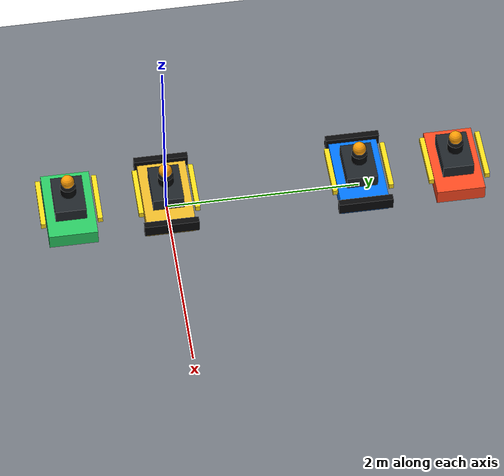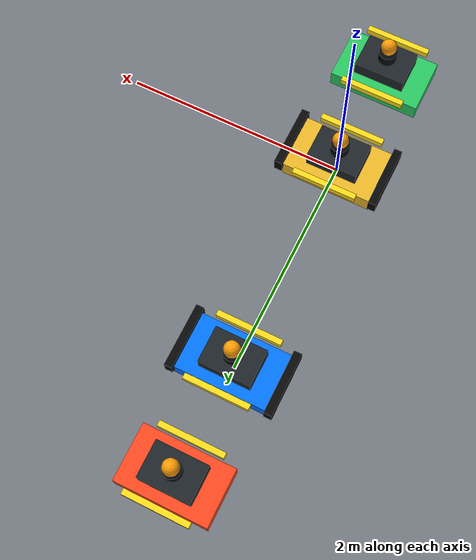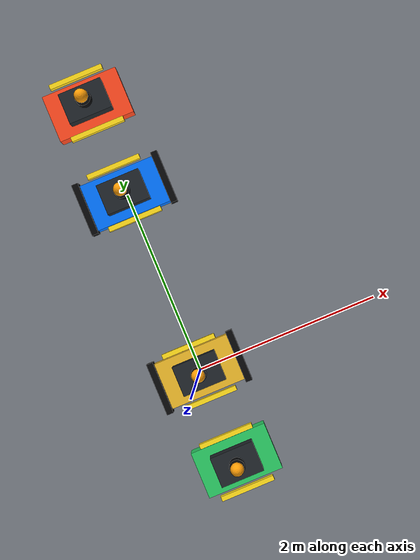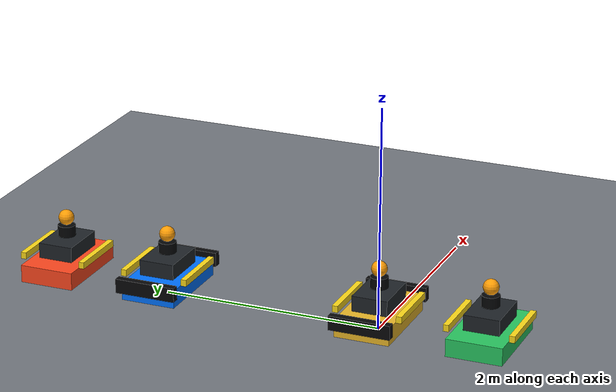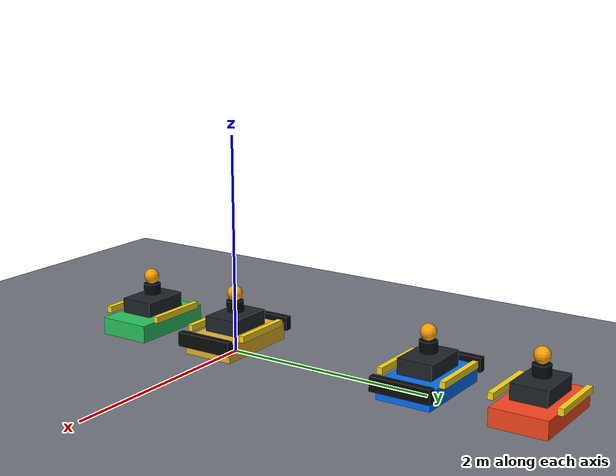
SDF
<?xml version="1.0" ?>
<sdf version="1.9">
  <world name="two_cars_world">
    <gravity>0 0 -9.8</gravity>

    <light name="sun" type="directional">
      <cast_shadows>true</cast_shadows>
      <pose>0 0 10 0 0 0</pose>
      <diffuse>0.8 0.8 0.8 1</diffuse>
      <specular>0.2 0.2 0.2 1</specular>
      <direction>-0.5 0.1 -0.9</direction>
    </light>

    <model name="floor">
      <static>true</static>
      <link name="floor_link">
        <collision name="floor_collision">
          <geometry>
            <plane>
              <normal>0 0 1</normal>
              <size>10 9</size>
            </plane>
          </geometry>
        </collision>
        <visual name="floor_visual">
          <geometry>
            <plane>
              <normal>0 0 1</normal>
              <size>10 9</size>
            </plane>
          </geometry>
          <material>
            <ambient>0.45 0.47 0.5 1</ambient>
            <diffuse>0.45 0.47 0.5 1</diffuse>
          </material>
        </visual>
      </link>
    </model>

    <model name="AGV1">
      <static>true</static>
      <pose>0 0 0 0 0 0</pose>
      <link name="AGV1_link">
        <visual name="base">
          <pose>0 0 0.13 0 0 0</pose>
          <geometry>
            <box>
              <size>0.82 0.50 0.16</size>
            </box>
          </geometry>
          <material>
            <ambient>0.92 0.72 0.16 1</ambient>
            <diffuse>0.92 0.72 0.16 1</diffuse>
          </material>
        </visual>
        <collision name="base_collision">
          <pose>0 0 0.13 0 0 0</pose>
          <geometry>
            <box>
              <size>0.82 0.50 0.16</size>
            </box>
          </geometry>
        </collision>
        <visual name="top_deck">
          <pose>0 0 0.30 0 0 0</pose>
          <geometry>
            <box>
              <size>0.46 0.32 0.14</size>
            </box>
          </geometry>
          <material>
            <ambient>0.12 0.14 0.16 1</ambient>
            <diffuse>0.12 0.14 0.16 1</diffuse>
          </material>
        </visual>
        <visual name="front_bumper">
          <pose>0.44 0 0.20 0 0 0</pose>
          <geometry>
            <box>
              <size>0.07 0.56 0.13</size>
            </box>
          </geometry>
          <material>
            <ambient>0.03 0.03 0.035 1</ambient>
            <diffuse>0.03 0.03 0.035 1</diffuse>
          </material>
        </visual>
        <visual name="rear_bumper">
          <pose>-0.44 0 0.20 0 0 0</pose>
          <geometry>
            <box>
              <size>0.07 0.56 0.13</size>
            </box>
          </geometry>
          <material>
            <ambient>0.03 0.03 0.035 1</ambient>
            <diffuse>0.03 0.03 0.035 1</diffuse>
          </material>
        </visual>
        <visual name="left_safety_strip">
          <pose>0 0.29 0.25 0 0 0</pose>
          <geometry>
            <box>
              <size>0.58 0.05 0.06</size>
            </box>
          </geometry>
          <material>
            <ambient>1.0 0.86 0.10 1</ambient>
            <diffuse>1.0 0.86 0.10 1</diffuse>
          </material>
        </visual>
        <visual name="right_safety_strip">
          <pose>0 -0.29 0.25 0 0 0</pose>
          <geometry>
            <box>
              <size>0.58 0.05 0.06</size>
            </box>
          </geometry>
          <material>
            <ambient>1.0 0.86 0.10 1</ambient>
            <diffuse>1.0 0.86 0.10 1</diffuse>
          </material>
        </visual>
        <visual name="lidar">
          <pose>0 0 0.44 0 0 0</pose>
          <geometry>
            <cylinder>
              <radius>0.08</radius>
              <length>0.10</length>
            </cylinder>
          </geometry>
          <material>
            <ambient>0.02 0.025 0.03 1</ambient>
            <diffuse>0.02 0.025 0.03 1</diffuse>
          </material>
        </visual>
        <visual name="beacon">
          <pose>0 0 0.56 0 0 0</pose>
          <geometry>
            <sphere>
              <radius>0.07</radius>
            </sphere>
          </geometry>
          <material>
            <ambient>1.0 0.62 0.02 1</ambient>
            <diffuse>1.0 0.62 0.02 1</diffuse>
          </material>
        </visual>
      </link>
    </model>

    <model name="AGV2">
      <static>true</static>
      <pose>0 2.0 0 0 0 0</pose>
      <link name="AGV2_link">
        <visual name="base">
          <pose>0 0 0.13 0 0 0</pose>
          <geometry>
            <box>
              <size>0.82 0.50 0.16</size>
            </box>
          </geometry>
          <material>
            <ambient>0.0 0.45 1.0 1</ambient>
            <diffuse>0.0 0.45 1.0 1</diffuse>
          </material>
        </visual>
        <collision name="base_collision">
          <pose>0 0 0.13 0 0 0</pose>
          <geometry>
            <box>
              <size>0.82 0.50 0.16</size>
            </box>
          </geometry>
        </collision>
        <visual name="top_deck">
          <pose>0 0 0.30 0 0 0</pose>
          <geometry>
            <box>
              <size>0.46 0.32 0.14</size>
            </box>
          </geometry>
          <material>
            <ambient>0.12 0.14 0.16 1</ambient>
            <diffuse>0.12 0.14 0.16 1</diffuse>
          </material>
        </visual>
        <visual name="front_bumper">
          <pose>0.44 0 0.20 0 0 0</pose>
          <geometry>
            <box>
              <size>0.07 0.56 0.13</size>
            </box>
          </geometry>
          <material>
            <ambient>0.03 0.03 0.035 1</ambient>
            <diffuse>0.03 0.03 0.035 1</diffuse>
          </material>
        </visual>
        <visual name="rear_bumper">
          <pose>-0.44 0 0.20 0 0 0</pose>
          <geometry>
            <box>
              <size>0.07 0.56 0.13</size>
            </box>
          </geometry>
          <material>
            <ambient>0.03 0.03 0.035 1</ambient>
            <diffuse>0.03 0.03 0.035 1</diffuse>
          </material>
        </visual>
        <visual name="left_safety_strip">
          <pose>0 0.29 0.25 0 0 0</pose>
          <geometry>
            <box>
              <size>0.58 0.05 0.06</size>
            </box>
          </geometry>
          <material>
            <ambient>1.0 0.86 0.10 1</ambient>
            <diffuse>1.0 0.86 0.10 1</diffuse>
          </material>
        </visual>
        <visual name="right_safety_strip">
          <pose>0 -0.29 0.25 0 0 0</pose>
          <geometry>
            <box>
              <size>0.58 0.05 0.06</size>
            </box>
          </geometry>
          <material>
            <ambient>1.0 0.86 0.10 1</ambient>
            <diffuse>1.0 0.86 0.10 1</diffuse>
          </material>
        </visual>
        <visual name="lidar">
          <pose>0 0 0.44 0 0 0</pose>
          <geometry>
            <cylinder>
              <radius>0.08</radius>
              <length>0.10</length>
            </cylinder>
          </geometry>
          <material>
            <ambient>0.02 0.025 0.03 1</ambient>
            <diffuse>0.02 0.025 0.03 1</diffuse>
          </material>
        </visual>
        <visual name="beacon">
          <pose>0 0 0.56 0 0 0</pose>
          <geometry>
            <sphere>
              <radius>0.07</radius>
            </sphere>
          </geometry>
          <material>
            <ambient>1.0 0.62 0.02 1</ambient>
            <diffuse>1.0 0.62 0.02 1</diffuse>
          </material>
        </visual>
      </link>
    </model>

    <model name="AGV3">
      <static>true</static>
      <pose>0 -1.0 0 0 0 0</pose>
      <link name="AGV3_link">
        <visual name="base">
          <pose>0 0 0.13 0 0 0</pose>
          <geometry>
            <box>
              <size>0.82 0.50 0.16</size>
            </box>
          </geometry>
          <material>
            <ambient>0.16 0.78 0.38 1</ambient>
            <diffuse>0.16 0.78 0.38 1</diffuse>
          </material>
        </visual>
        <visual name="top_deck">
          <pose>0 0 0.30 0 0 0</pose>
          <geometry>
            <box>
              <size>0.46 0.32 0.14</size>
            </box>
          </geometry>
          <material>
            <ambient>0.12 0.14 0.16 1</ambient>
            <diffuse>0.12 0.14 0.16 1</diffuse>
          </material>
        </visual>
        <visual name="safety_strip_left">
          <pose>0 0.29 0.25 0 0 0</pose>
          <geometry>
            <box>
              <size>0.58 0.05 0.06</size>
            </box>
          </geometry>
          <material>
            <ambient>1.0 0.86 0.10 1</ambient>
            <diffuse>1.0 0.86 0.10 1</diffuse>
          </material>
        </visual>
        <visual name="safety_strip_right">
          <pose>0 -0.29 0.25 0 0 0</pose>
          <geometry>
            <box>
              <size>0.58 0.05 0.06</size>
            </box>
          </geometry>
          <material>
            <ambient>1.0 0.86 0.10 1</ambient>
            <diffuse>1.0 0.86 0.10 1</diffuse>
          </material>
        </visual>
        <visual name="lidar">
          <pose>0 0 0.44 0 0 0</pose>
          <geometry>
            <cylinder>
              <radius>0.08</radius>
              <length>0.10</length>
            </cylinder>
          </geometry>
          <material>
            <ambient>0.02 0.025 0.03 1</ambient>
            <diffuse>0.02 0.025 0.03 1</diffuse>
          </material>
        </visual>
        <visual name="beacon">
          <pose>0 0 0.56 0 0 0</pose>
          <geometry>
            <sphere>
              <radius>0.07</radius>
            </sphere>
          </geometry>
          <material>
            <ambient>1.0 0.62 0.02 1</ambient>
            <diffuse>1.0 0.62 0.02 1</diffuse>
          </material>
        </visual>
      </link>
    </model>

    <model name="AGV4">
      <static>true</static>
      <pose>0 3.0 0 0 0 0</pose>
      <link name="AGV4_link">
        <visual name="base">
          <pose>0 0 0.13 0 0 0</pose>
          <geometry>
            <box>
              <size>0.82 0.50 0.16</size>
            </box>
          </geometry>
          <material>
            <ambient>1.0 0.28 0.12 1</ambient>
            <diffuse>1.0 0.28 0.12 1</diffuse>
          </material>
        </visual>
        <visual name="top_deck">
          <pose>0 0 0.30 0 0 0</pose>
          <geometry>
            <box>
              <size>0.46 0.32 0.14</size>
            </box>
          </geometry>
          <material>
            <ambient>0.12 0.14 0.16 1</ambient>
            <diffuse>0.12 0.14 0.16 1</diffuse>
          </material>
        </visual>
        <visual name="safety_strip_left">
          <pose>0 0.29 0.25 0 0 0</pose>
          <geometry>
            <box>
              <size>0.58 0.05 0.06</size>
            </box>
          </geometry>
          <material>
            <ambient>1.0 0.86 0.10 1</ambient>
            <diffuse>1.0 0.86 0.10 1</diffuse>
          </material>
        </visual>
        <visual name="safety_strip_right">
          <pose>0 -0.29 0.25 0 0 0</pose>
          <geometry>
            <box>
              <size>0.58 0.05 0.06</size>
            </box>
          </geometry>
          <material>
            <ambient>1.0 0.86 0.10 1</ambient>
            <diffuse>1.0 0.86 0.10 1</diffuse>
          </material>
        </visual>
        <visual name="lidar">
          <pose>0 0 0.44 0 0 0</pose>
          <geometry>
            <cylinder>
              <radius>0.08</radius>
              <length>0.10</length>
            </cylinder>
          </geometry>
          <material>
            <ambient>0.02 0.025 0.03 1</ambient>
            <diffuse>0.02 0.025 0.03 1</diffuse>
          </material>
        </visual>
        <visual name="beacon">
          <pose>0 0 0.56 0 0 0</pose>
          <geometry>
            <sphere>
              <radius>0.07</radius>
            </sphere>
          </geometry>
          <material>
            <ambient>1.0 0.62 0.02 1</ambient>
            <diffuse>1.0 0.62 0.02 1</diffuse>
          </material>
        </visual>
      </link>
    </model>
  </world>
</sdf>
